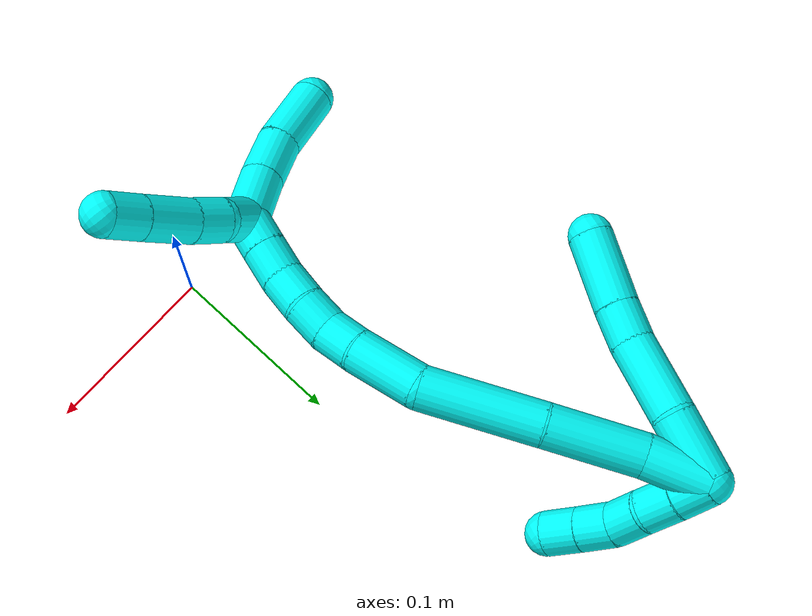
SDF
<sdf version="1.7">
 <world name="default">
  <model name="3">
   <static>0</static>
   <link name="3">
    <collision name="collision-cylinder-e_1_2_8">
     <pose>0.01358 -0.014236 0.00234 1.40786 0.755174 0.649628</pose>
     <geometry><cylinder><radius>0.0125</radius><length>0.039627</length></cylinder></geometry>
     <surface>
      <friction><ode><mu>1.16</mu><mu2>1.16</mu2><slip1>0</slip1><slip2>0</slip2></ode></friction>
      <contact><ode><kp>1e+06</kp><kd>1</kd><max_vel>0</max_vel><min_depth>0.001</min_depth></ode></contact>
     </surface>
    </collision>
    <visual name="visual-cylinder-e_1_2_8">
     <pose>0.01358 -0.014236 0.00234 1.40786 0.755174 0.649628</pose>
     <geometry><cylinder><radius>0.0125</radius><length>0.039627</length></cylinder></geometry>
     <material><ambient>0.003922 1 0.996078 1</ambient></material>
    </visual>
    <collision name="collision-cylinder-e_2_8_9">
     <pose>0.039217 -0.047701 0.006588 1.47195 0.557832 0.507582</pose>
     <geometry><cylinder><radius>0.0125</radius><length>0.045551</length></cylinder></geometry>
     <surface>
      <friction><ode><mu>1.16</mu><mu2>1.16</mu2><slip1>0</slip1><slip2>0</slip2></ode></friction>
      <contact><ode><kp>1e+06</kp><kd>1</kd><max_vel>0</max_vel><min_depth>0.001</min_depth></ode></contact>
     </surface>
    </collision>
    <visual name="visual-cylinder-e_2_8_9">
     <pose>0.039217 -0.047701 0.006588 1.47195 0.557832 0.507582</pose>
     <geometry><cylinder><radius>0.0125</radius><length>0.045551</length></cylinder></geometry>
     <material><ambient>0.003922 1 0.996078 1</ambient></material>
    </visual>
    <collision name="collision-cylinder-e_3_9_10">
     <pose>0.057826 -0.075573 0.010752 1.3153 0.632873 0.495404</pose>
     <geometry><cylinder><radius>0.0125</radius><length>0.022157</length></cylinder></geometry>
     <surface>
      <friction><ode><mu>1.16</mu><mu2>1.16</mu2><slip1>0</slip1><slip2>0</slip2></ode></friction>
      <contact><ode><kp>1e+06</kp><kd>1</kd><max_vel>0</max_vel><min_depth>0.001</min_depth></ode></contact>
     </surface>
    </collision>
    <visual name="visual-cylinder-e_3_9_10">
     <pose>0.057826 -0.075573 0.010752 1.3153 0.632873 0.495404</pose>
     <geometry><cylinder><radius>0.0125</radius><length>0.022157</length></cylinder></geometry>
     <material><ambient>0.003922 1 0.996078 1</ambient></material>
    </visual>
    <collision name="collision-cylinder-e_4_10_6">
     <pose>0.07662 -0.100855 0.018334 1.26111 0.611178 0.452675</pose>
     <geometry><cylinder><radius>0.0125</radius><length>0.042664</length></cylinder></geometry>
     <surface>
      <friction><ode><mu>1.16</mu><mu2>1.16</mu2><slip1>0</slip1><slip2>0</slip2></ode></friction>
      <contact><ode><kp>1e+06</kp><kd>1</kd><max_vel>0</max_vel><min_depth>0.001</min_depth></ode></contact>
     </surface>
    </collision>
    <visual name="visual-cylinder-e_4_10_6">
     <pose>0.07662 -0.100855 0.018334 1.26111 0.611178 0.452675</pose>
     <geometry><cylinder><radius>0.0125</radius><length>0.042664</length></cylinder></geometry>
     <material><ambient>0.003922 1 0.996078 1</ambient></material>
    </visual>
    <collision name="collision-cylinder-e_1_2_11">
     <pose>-0.000101 -0.002667 -0.009637 2.87163 -0.010061 -0.074054</pose>
     <geometry><cylinder><radius>0.0125</radius><length>0.02</length></cylinder></geometry>
     <surface>
      <friction><ode><mu>1.16</mu><mu2>1.16</mu2><slip1>0</slip1><slip2>0</slip2></ode></friction>
      <contact><ode><kp>1e+06</kp><kd>1</kd><max_vel>0</max_vel><min_depth>0.001</min_depth></ode></contact>
     </surface>
    </collision>
    <visual name="visual-cylinder-e_1_2_11">
     <pose>-0.000101 -0.002667 -0.009637 2.87163 -0.010061 -0.074054</pose>
     <geometry><cylinder><radius>0.0125</radius><length>0.02</length></cylinder></geometry>
     <material><ambient>0.003922 1 0.996078 1</ambient></material>
    </visual>
    <collision name="collision-cylinder-e_2_11_12">
     <pose>-0.00039 -0.008504 -0.028757 2.81887 -0.018875 -0.115835</pose>
     <geometry><cylinder><radius>0.0125</radius><length>0.02</length></cylinder></geometry>
     <surface>
      <friction><ode><mu>1.16</mu><mu2>1.16</mu2><slip1>0</slip1><slip2>0</slip2></ode></friction>
      <contact><ode><kp>1e+06</kp><kd>1</kd><max_vel>0</max_vel><min_depth>0.001</min_depth></ode></contact>
     </surface>
    </collision>
    <visual name="visual-cylinder-e_2_11_12">
     <pose>-0.00039 -0.008504 -0.028757 2.81887 -0.018875 -0.115835</pose>
     <geometry><cylinder><radius>0.0125</radius><length>0.02</length></cylinder></geometry>
     <material><ambient>0.003922 1 0.996078 1</ambient></material>
    </visual>
    <collision name="collision-cylinder-e_3_12_13">
     <pose>-0.002234 -0.015963 -0.04712 2.69182 -0.166281 -0.698687</pose>
     <geometry><cylinder><radius>0.0125</radius><length>0.02</length></cylinder></geometry>
     <surface>
      <friction><ode><mu>1.16</mu><mu2>1.16</mu2><slip1>0</slip1><slip2>0</slip2></ode></friction>
      <contact><ode><kp>1e+06</kp><kd>1</kd><max_vel>0</max_vel><min_depth>0.001</min_depth></ode></contact>
     </surface>
    </collision>
    <visual name="visual-cylinder-e_3_12_13">
     <pose>-0.002234 -0.015963 -0.04712 2.69182 -0.166281 -0.698687</pose>
     <geometry><cylinder><radius>0.0125</radius><length>0.02</length></cylinder></geometry>
     <material><ambient>0.003922 1 0.996078 1</ambient></material>
    </visual>
    <collision name="collision-cylinder-e_4_13_14">
     <pose>-0.002335 -0.024801 -0.064769 2.66285 0.15608 0.620166</pose>
     <geometry><cylinder><radius>0.0125</radius><length>0.02</length></cylinder></geometry>
     <surface>
      <friction><ode><mu>1.16</mu><mu2>1.16</mu2><slip1>0</slip1><slip2>0</slip2></ode></friction>
      <contact><ode><kp>1e+06</kp><kd>1</kd><max_vel>0</max_vel><min_depth>0.001</min_depth></ode></contact>
     </surface>
    </collision>
    <visual name="visual-cylinder-e_4_13_14">
     <pose>-0.002335 -0.024801 -0.064769 2.66285 0.15608 0.620166</pose>
     <geometry><cylinder><radius>0.0125</radius><length>0.02</length></cylinder></geometry>
     <material><ambient>0.003922 1 0.996078 1</ambient></material>
    </visual>
    <collision name="collision-cylinder-e_5_14_5">
     <pose>0.000765 -0.034115 -0.082193 2.6386 0.155156 0.587569</pose>
     <geometry><cylinder><radius>0.0125</radius><length>0.02</length></cylinder></geometry>
     <surface>
      <friction><ode><mu>1.16</mu><mu2>1.16</mu2><slip1>0</slip1><slip2>0</slip2></ode></friction>
      <contact><ode><kp>1e+06</kp><kd>1</kd><max_vel>0</max_vel><min_depth>0.001</min_depth></ode></contact>
     </surface>
    </collision>
    <visual name="visual-cylinder-e_5_14_5">
     <pose>0.000765 -0.034115 -0.082193 2.6386 0.155156 0.587569</pose>
     <geometry><cylinder><radius>0.0125</radius><length>0.02</length></cylinder></geometry>
     <material><ambient>0.003922 1 0.996078 1</ambient></material>
    </visual>
    <collision name="collision-cylinder-e_1_2_15">
     <pose>0.013386 -0.008207 -0.009585 2.43347 0.814899 1.72515</pose>
     <geometry><cylinder><radius>0.0125</radius><length>0.036791</length></cylinder></geometry>
     <surface>
      <friction><ode><mu>1.16</mu><mu2>1.16</mu2><slip1>0</slip1><slip2>0</slip2></ode></friction>
      <contact><ode><kp>1e+06</kp><kd>1</kd><max_vel>0</max_vel><min_depth>0.001</min_depth></ode></contact>
     </surface>
    </collision>
    <visual name="visual-cylinder-e_1_2_15">
     <pose>0.013386 -0.008207 -0.009585 2.43347 0.814899 1.72515</pose>
     <geometry><cylinder><radius>0.0125</radius><length>0.036791</length></cylinder></geometry>
     <material><ambient>0.003922 1 0.996078 1</ambient></material>
    </visual>
    <collision name="collision-cylinder-e_2_15_16">
     <pose>0.047586 -0.024989 -0.034734 2.63803 0.864116 2.12386</pose>
     <geometry><cylinder><radius>0.0125</radius><length>0.054738</length></cylinder></geometry>
     <surface>
      <friction><ode><mu>1.16</mu><mu2>1.16</mu2><slip1>0</slip1><slip2>0</slip2></ode></friction>
      <contact><ode><kp>1e+06</kp><kd>1</kd><max_vel>0</max_vel><min_depth>0.001</min_depth></ode></contact>
     </surface>
    </collision>
    <visual name="visual-cylinder-e_2_15_16">
     <pose>0.047586 -0.024989 -0.034734 2.63803 0.864116 2.12386</pose>
     <geometry><cylinder><radius>0.0125</radius><length>0.054738</length></cylinder></geometry>
     <material><ambient>0.003922 1 0.996078 1</ambient></material>
    </visual>
    <collision name="collision-cylinder-e_3_16_17">
     <pose>0.091883 -0.047527 -0.070587 2.53883 0.761598 1.82114</pose>
     <geometry><cylinder><radius>0.0125</radius><length>0.068058</length></cylinder></geometry>
     <surface>
      <friction><ode><mu>1.16</mu><mu2>1.16</mu2><slip1>0</slip1><slip2>0</slip2></ode></friction>
      <contact><ode><kp>1e+06</kp><kd>1</kd><max_vel>0</max_vel><min_depth>0.001</min_depth></ode></contact>
     </surface>
    </collision>
    <visual name="visual-cylinder-e_3_16_17">
     <pose>0.091883 -0.047527 -0.070587 2.53883 0.761598 1.82114</pose>
     <geometry><cylinder><radius>0.0125</radius><length>0.068058</length></cylinder></geometry>
     <material><ambient>0.003922 1 0.996078 1</ambient></material>
    </visual>
    <collision name="collision-cylinder-e_4_17_18">
     <pose>0.127289 -0.075108 -0.09918 2.11841 0.641857 1.06914</pose>
     <geometry><cylinder><radius>0.0125</radius><length>0.03983</length></cylinder></geometry>
     <surface>
      <friction><ode><mu>1.16</mu><mu2>1.16</mu2><slip1>0</slip1><slip2>0</slip2></ode></friction>
      <contact><ode><kp>1e+06</kp><kd>1</kd><max_vel>0</max_vel><min_depth>0.001</min_depth></ode></contact>
     </surface>
    </collision>
    <visual name="visual-cylinder-e_4_17_18">
     <pose>0.127289 -0.075108 -0.09918 2.11841 0.641857 1.06914</pose>
     <geometry><cylinder><radius>0.0125</radius><length>0.03983</length></cylinder></geometry>
     <material><ambient>0.003922 1 0.996078 1</ambient></material>
    </visual>
    <collision name="collision-cylinder-e_5_18_19">
     <pose>0.144487 -0.096632 -0.111208 2.01092 0.543209 0.827288</pose>
     <geometry><cylinder><radius>0.0125</radius><length>0.020413</length></cylinder></geometry>
     <surface>
      <friction><ode><mu>1.16</mu><mu2>1.16</mu2><slip1>0</slip1><slip2>0</slip2></ode></friction>
      <contact><ode><kp>1e+06</kp><kd>1</kd><max_vel>0</max_vel><min_depth>0.001</min_depth></ode></contact>
     </surface>
    </collision>
    <visual name="visual-cylinder-e_5_18_19">
     <pose>0.144487 -0.096632 -0.111208 2.01092 0.543209 0.827288</pose>
     <geometry><cylinder><radius>0.0125</radius><length>0.020413</length></cylinder></geometry>
     <material><ambient>0.003922 1 0.996078 1</ambient></material>
    </visual>
    <collision name="collision-cylinder-e_6_19_20">
     <pose>0.156708 -0.111639 -0.116482 1.78592 0.762523 0.923976</pose>
     <geometry><cylinder><radius>0.0125</radius><length>0.020111</length></cylinder></geometry>
     <surface>
      <friction><ode><mu>1.16</mu><mu2>1.16</mu2><slip1>0</slip1><slip2>0</slip2></ode></friction>
      <contact><ode><kp>1e+06</kp><kd>1</kd><max_vel>0</max_vel><min_depth>0.001</min_depth></ode></contact>
     </surface>
    </collision>
    <visual name="visual-cylinder-e_6_19_20">
     <pose>0.156708 -0.111639 -0.116482 1.78592 0.762523 0.923976</pose>
     <geometry><cylinder><radius>0.0125</radius><length>0.020111</length></cylinder></geometry>
     <material><ambient>0.003922 1 0.996078 1</ambient></material>
    </visual>
    <collision name="collision-cylinder-e_7_20_21">
     <pose>0.169442 -0.126823 -0.119157 1.7088 0.617123 0.701839</pose>
     <geometry><cylinder><radius>0.0125</radius><length>0.020005</length></cylinder></geometry>
     <surface>
      <friction><ode><mu>1.16</mu><mu2>1.16</mu2><slip1>0</slip1><slip2>0</slip2></ode></friction>
      <contact><ode><kp>1e+06</kp><kd>1</kd><max_vel>0</max_vel><min_depth>0.001</min_depth></ode></contact>
     </surface>
    </collision>
    <visual name="visual-cylinder-e_7_20_21">
     <pose>0.169442 -0.126823 -0.119157 1.7088 0.617123 0.701839</pose>
     <geometry><cylinder><radius>0.0125</radius><length>0.020005</length></cylinder></geometry>
     <material><ambient>0.003922 1 0.996078 1</ambient></material>
    </visual>
    <collision name="collision-cylinder-e_8_21_22">
     <pose>0.181709 -0.142519 -0.120052 1.54106 0.704634 0.685587</pose>
     <geometry><cylinder><radius>0.0125</radius><length>0.020005</length></cylinder></geometry>
     <surface>
      <friction><ode><mu>1.16</mu><mu2>1.16</mu2><slip1>0</slip1><slip2>0</slip2></ode></friction>
      <contact><ode><kp>1e+06</kp><kd>1</kd><max_vel>0</max_vel><min_depth>0.001</min_depth></ode></contact>
     </surface>
    </collision>
    <visual name="visual-cylinder-e_8_21_22">
     <pose>0.181709 -0.142519 -0.120052 1.54106 0.704634 0.685587</pose>
     <geometry><cylinder><radius>0.0125</radius><length>0.020005</length></cylinder></geometry>
     <material><ambient>0.003922 1 0.996078 1</ambient></material>
    </visual>
    <collision name="collision-cylinder-e_9_22_1">
     <pose>0.194619 -0.15782 -0.119493 1.52757 0.696402 0.669125</pose>
     <geometry><cylinder><radius>0.0125</radius><length>0.020051</length></cylinder></geometry>
     <surface>
      <friction><ode><mu>1.16</mu><mu2>1.16</mu2><slip1>0</slip1><slip2>0</slip2></ode></friction>
      <contact><ode><kp>1e+06</kp><kd>1</kd><max_vel>0</max_vel><min_depth>0.001</min_depth></ode></contact>
     </surface>
    </collision>
    <visual name="visual-cylinder-e_9_22_1">
     <pose>0.194619 -0.15782 -0.119493 1.52757 0.696402 0.669125</pose>
     <geometry><cylinder><radius>0.0125</radius><length>0.020051</length></cylinder></geometry>
     <material><ambient>0.003922 1 0.996078 1</ambient></material>
    </visual>
    <collision name="collision-cylinder-e_1_1_23">
     <pose>0.200786 -0.179243 -0.111472 1.0606 -0.016807 -0.009854</pose>
     <geometry><cylinder><radius>0.0125</radius><length>0.031493</length></cylinder></geometry>
     <surface>
      <friction><ode><mu>1.16</mu><mu2>1.16</mu2><slip1>0</slip1><slip2>0</slip2></ode></friction>
      <contact><ode><kp>1e+06</kp><kd>1</kd><max_vel>0</max_vel><min_depth>0.001</min_depth></ode></contact>
     </surface>
    </collision>
    <visual name="visual-cylinder-e_1_1_23">
     <pose>0.200786 -0.179243 -0.111472 1.0606 -0.016807 -0.009854</pose>
     <geometry><cylinder><radius>0.0125</radius><length>0.031493</length></cylinder></geometry>
     <material><ambient>0.003922 1 0.996078 1</ambient></material>
    </visual>
    <collision name="collision-cylinder-e_2_23_24">
     <pose>0.200231 -0.204795 -0.095463 0.95713 -0.020091 -0.010423</pose>
     <geometry><cylinder><radius>0.0125</radius><length>0.028904</length></cylinder></geometry>
     <surface>
      <friction><ode><mu>1.16</mu><mu2>1.16</mu2><slip1>0</slip1><slip2>0</slip2></ode></friction>
      <contact><ode><kp>1e+06</kp><kd>1</kd><max_vel>0</max_vel><min_depth>0.001</min_depth></ode></contact>
     </surface>
    </collision>
    <visual name="visual-cylinder-e_2_23_24">
     <pose>0.200231 -0.204795 -0.095463 0.95713 -0.020091 -0.010423</pose>
     <geometry><cylinder><radius>0.0125</radius><length>0.028904</length></cylinder></geometry>
     <material><ambient>0.003922 1 0.996078 1</ambient></material>
    </visual>
    <collision name="collision-cylinder-e_3_24_4">
     <pose>0.197358 -0.231038 -0.073831 0.825714 -0.130767 -0.057346</pose>
     <geometry><cylinder><radius>0.0125</radius><length>0.039603</length></cylinder></geometry>
     <surface>
      <friction><ode><mu>1.16</mu><mu2>1.16</mu2><slip1>0</slip1><slip2>0</slip2></ode></friction>
      <contact><ode><kp>1e+06</kp><kd>1</kd><max_vel>0</max_vel><min_depth>0.001</min_depth></ode></contact>
     </surface>
    </collision>
    <visual name="visual-cylinder-e_3_24_4">
     <pose>0.197358 -0.231038 -0.073831 0.825714 -0.130767 -0.057346</pose>
     <geometry><cylinder><radius>0.0125</radius><length>0.039603</length></cylinder></geometry>
     <material><ambient>0.003922 1 0.996078 1</ambient></material>
    </visual>
    <collision name="collision-cylinder-e_1_1_25">
     <pose>0.209822 -0.157481 -0.122435 -1.9582 0.7915 -1.11245</pose>
     <geometry><cylinder><radius>0.0125</radius><length>0.02466</length></cylinder></geometry>
     <surface>
      <friction><ode><mu>1.16</mu><mu2>1.16</mu2><slip1>0</slip1><slip2>0</slip2></ode></friction>
      <contact><ode><kp>1e+06</kp><kd>1</kd><max_vel>0</max_vel><min_depth>0.001</min_depth></ode></contact>
     </surface>
    </collision>
    <visual name="visual-cylinder-e_1_1_25">
     <pose>0.209822 -0.157481 -0.122435 -1.9582 0.7915 -1.11245</pose>
     <geometry><cylinder><radius>0.0125</radius><length>0.02466</length></cylinder></geometry>
     <material><ambient>0.003922 1 0.996078 1</ambient></material>
    </visual>
    <collision name="collision-cylinder-e_2_25_26">
     <pose>0.226394 -0.145165 -0.130973 -2.45748 0.85436 -1.81405</pose>
     <geometry><cylinder><radius>0.0125</radius><length>0.020687</length></cylinder></geometry>
     <surface>
      <friction><ode><mu>1.16</mu><mu2>1.16</mu2><slip1>0</slip1><slip2>0</slip2></ode></friction>
      <contact><ode><kp>1e+06</kp><kd>1</kd><max_vel>0</max_vel><min_depth>0.001</min_depth></ode></contact>
     </surface>
    </collision>
    <visual name="visual-cylinder-e_2_25_26">
     <pose>0.226394 -0.145165 -0.130973 -2.45748 0.85436 -1.81405</pose>
     <geometry><cylinder><radius>0.0125</radius><length>0.020687</length></cylinder></geometry>
     <material><ambient>0.003922 1 0.996078 1</ambient></material>
    </visual>
    <collision name="collision-cylinder-e_3_26_27">
     <pose>0.24715 -0.13445 -0.143423 -2.41231 0.931196 -1.84222</pose>
     <geometry><cylinder><radius>0.0125</radius><length>0.032293</length></cylinder></geometry>
     <surface>
      <friction><ode><mu>1.16</mu><mu2>1.16</mu2><slip1>0</slip1><slip2>0</slip2></ode></friction>
      <contact><ode><kp>1e+06</kp><kd>1</kd><max_vel>0</max_vel><min_depth>0.001</min_depth></ode></contact>
     </surface>
    </collision>
    <visual name="visual-cylinder-e_3_26_27">
     <pose>0.24715 -0.13445 -0.143423 -2.41231 0.931196 -1.84222</pose>
     <geometry><cylinder><radius>0.0125</radius><length>0.032293</length></cylinder></geometry>
     <material><ambient>0.003922 1 0.996078 1</ambient></material>
    </visual>
    <collision name="collision-cylinder-e_4_27_3">
     <pose>0.269177 -0.123815 -0.155603 -2.44075 0.946648 -1.90193</pose>
     <geometry><cylinder><radius>0.0125</radius><length>0.022359</length></cylinder></geometry>
     <surface>
      <friction><ode><mu>1.16</mu><mu2>1.16</mu2><slip1>0</slip1><slip2>0</slip2></ode></friction>
      <contact><ode><kp>1e+06</kp><kd>1</kd><max_vel>0</max_vel><min_depth>0.001</min_depth></ode></contact>
     </surface>
    </collision>
    <visual name="visual-cylinder-e_4_27_3">
     <pose>0.269177 -0.123815 -0.155603 -2.44075 0.946648 -1.90193</pose>
     <geometry><cylinder><radius>0.0125</radius><length>0.022359</length></cylinder></geometry>
     <material><ambient>0.003922 1 0.996078 1</ambient></material>
    </visual>
    <collision name="collision-sphere-3">
     <pose>0.278249 -0.119602 -0.160596 0 -0 0</pose>
     <geometry><sphere><radius>0.0125</radius></sphere></geometry>
     <surface>
      <friction><ode><mu>1.16</mu><mu2>1.16</mu2><slip1>0</slip1><slip2>0</slip2></ode></friction>
      <contact><ode><kp>1e+06</kp><kd>1</kd><max_vel>0</max_vel><min_depth>0.001</min_depth></ode></contact>
     </surface>
    </collision>
    <visual name="visual-sphere-3">
     <pose>0.278249 -0.119602 -0.160596 0 -0 0</pose>
     <geometry><sphere><radius>0.0125</radius></sphere></geometry>
     <material><ambient>0.003922 1 0.996078 1</ambient></material>
    </visual>
    <collision name="collision-sphere-27">
     <pose>0.260105 -0.128028 -0.150609 0 -0 0</pose>
     <geometry><sphere><radius>0.0125</radius></sphere></geometry>
     <surface>
      <friction><ode><mu>1.16</mu><mu2>1.16</mu2><slip1>0</slip1><slip2>0</slip2></ode></friction>
      <contact><ode><kp>1e+06</kp><kd>1</kd><max_vel>0</max_vel><min_depth>0.001</min_depth></ode></contact>
     </surface>
    </collision>
    <visual name="visual-sphere-27">
     <pose>0.260105 -0.128028 -0.150609 0 -0 0</pose>
     <geometry><sphere><radius>0.0125</radius></sphere></geometry>
     <material><ambient>0.003922 1 0.996078 1</ambient></material>
    </visual>
    <collision name="collision-sphere-26">
     <pose>0.234195 -0.140872 -0.136237 0 -0 0</pose>
     <geometry><sphere><radius>0.0125</radius></sphere></geometry>
     <surface>
      <friction><ode><mu>1.16</mu><mu2>1.16</mu2><slip1>0</slip1><slip2>0</slip2></ode></friction>
      <contact><ode><kp>1e+06</kp><kd>1</kd><max_vel>0</max_vel><min_depth>0.001</min_depth></ode></contact>
     </surface>
    </collision>
    <visual name="visual-sphere-26">
     <pose>0.234195 -0.140872 -0.136237 0 -0 0</pose>
     <geometry><sphere><radius>0.0125</radius></sphere></geometry>
     <material><ambient>0.003922 1 0.996078 1</ambient></material>
    </visual>
    <collision name="collision-sphere-25">
     <pose>0.218594 -0.149458 -0.125708 0 -0 0</pose>
     <geometry><sphere><radius>0.0125</radius></sphere></geometry>
     <surface>
      <friction><ode><mu>1.16</mu><mu2>1.16</mu2><slip1>0</slip1><slip2>0</slip2></ode></friction>
      <contact><ode><kp>1e+06</kp><kd>1</kd><max_vel>0</max_vel><min_depth>0.001</min_depth></ode></contact>
     </surface>
    </collision>
    <visual name="visual-sphere-25">
     <pose>0.218594 -0.149458 -0.125708 0 -0 0</pose>
     <geometry><sphere><radius>0.0125</radius></sphere></geometry>
     <material><ambient>0.003922 1 0.996078 1</ambient></material>
    </visual>
    <collision name="collision-sphere-4">
     <pose>0.194776 -0.245469 -0.060519 0 -0 0</pose>
     <geometry><sphere><radius>0.0125</radius></sphere></geometry>
     <surface>
      <friction><ode><mu>1.16</mu><mu2>1.16</mu2><slip1>0</slip1><slip2>0</slip2></ode></friction>
      <contact><ode><kp>1e+06</kp><kd>1</kd><max_vel>0</max_vel><min_depth>0.001</min_depth></ode></contact>
     </surface>
    </collision>
    <visual name="visual-sphere-4">
     <pose>0.194776 -0.245469 -0.060519 0 -0 0</pose>
     <geometry><sphere><radius>0.0125</radius></sphere></geometry>
     <material><ambient>0.003922 1 0.996078 1</ambient></material>
    </visual>
    <collision name="collision-sphere-24">
     <pose>0.19994 -0.216608 -0.087142 0 -0 0</pose>
     <geometry><sphere><radius>0.0125</radius></sphere></geometry>
     <surface>
      <friction><ode><mu>1.16</mu><mu2>1.16</mu2><slip1>0</slip1><slip2>0</slip2></ode></friction>
      <contact><ode><kp>1e+06</kp><kd>1</kd><max_vel>0</max_vel><min_depth>0.001</min_depth></ode></contact>
     </surface>
    </collision>
    <visual name="visual-sphere-24">
     <pose>0.19994 -0.216608 -0.087142 0 -0 0</pose>
     <geometry><sphere><radius>0.0125</radius></sphere></geometry>
     <material><ambient>0.003922 1 0.996078 1</ambient></material>
    </visual>
    <collision name="collision-sphere-23">
     <pose>0.200521 -0.192982 -0.103784 0 -0 0</pose>
     <geometry><sphere><radius>0.0125</radius></sphere></geometry>
     <surface>
      <friction><ode><mu>1.16</mu><mu2>1.16</mu2><slip1>0</slip1><slip2>0</slip2></ode></friction>
      <contact><ode><kp>1e+06</kp><kd>1</kd><max_vel>0</max_vel><min_depth>0.001</min_depth></ode></contact>
     </surface>
    </collision>
    <visual name="visual-sphere-23">
     <pose>0.200521 -0.192982 -0.103784 0 -0 0</pose>
     <geometry><sphere><radius>0.0125</radius></sphere></geometry>
     <material><ambient>0.003922 1 0.996078 1</ambient></material>
    </visual>
    <collision name="collision-sphere-1">
     <pose>0.20105 -0.165504 -0.119161 0 -0 0</pose>
     <geometry><sphere><radius>0.0125</radius></sphere></geometry>
     <surface>
      <friction><ode><mu>1.16</mu><mu2>1.16</mu2><slip1>0</slip1><slip2>0</slip2></ode></friction>
      <contact><ode><kp>1e+06</kp><kd>1</kd><max_vel>0</max_vel><min_depth>0.001</min_depth></ode></contact>
     </surface>
    </collision>
    <visual name="visual-sphere-1">
     <pose>0.20105 -0.165504 -0.119161 0 -0 0</pose>
     <geometry><sphere><radius>0.0125</radius></sphere></geometry>
     <material><ambient>0.003922 1 0.996078 1</ambient></material>
    </visual>
    <collision name="collision-sphere-22">
     <pose>0.188188 -0.150136 -0.119826 0 -0 0</pose>
     <geometry><sphere><radius>0.0125</radius></sphere></geometry>
     <surface>
      <friction><ode><mu>1.16</mu><mu2>1.16</mu2><slip1>0</slip1><slip2>0</slip2></ode></friction>
      <contact><ode><kp>1e+06</kp><kd>1</kd><max_vel>0</max_vel><min_depth>0.001</min_depth></ode></contact>
     </surface>
    </collision>
    <visual name="visual-sphere-22">
     <pose>0.188188 -0.150136 -0.119826 0 -0 0</pose>
     <geometry><sphere><radius>0.0125</radius></sphere></geometry>
     <material><ambient>0.003922 1 0.996078 1</ambient></material>
    </visual>
    <collision name="collision-sphere-21">
     <pose>0.17523 -0.134902 -0.120279 0 -0 0</pose>
     <geometry><sphere><radius>0.0125</radius></sphere></geometry>
     <surface>
      <friction><ode><mu>1.16</mu><mu2>1.16</mu2><slip1>0</slip1><slip2>0</slip2></ode></friction>
      <contact><ode><kp>1e+06</kp><kd>1</kd><max_vel>0</max_vel><min_depth>0.001</min_depth></ode></contact>
     </surface>
    </collision>
    <visual name="visual-sphere-21">
     <pose>0.17523 -0.134902 -0.120279 0 -0 0</pose>
     <geometry><sphere><radius>0.0125</radius></sphere></geometry>
     <material><ambient>0.003922 1 0.996078 1</ambient></material>
    </visual>
    <collision name="collision-sphere-11">
     <pose>-0.000201 -0.005334 -0.019275 0 -0 0</pose>
     <geometry><sphere><radius>0.0125</radius></sphere></geometry>
     <surface>
      <friction><ode><mu>1.16</mu><mu2>1.16</mu2><slip1>0</slip1><slip2>0</slip2></ode></friction>
      <contact><ode><kp>1e+06</kp><kd>1</kd><max_vel>0</max_vel><min_depth>0.001</min_depth></ode></contact>
     </surface>
    </collision>
    <visual name="visual-sphere-11">
     <pose>-0.000201 -0.005334 -0.019275 0 -0 0</pose>
     <geometry><sphere><radius>0.0125</radius></sphere></geometry>
     <material><ambient>0.003922 1 0.996078 1</ambient></material>
    </visual>
    <collision name="collision-sphere-6">
     <pose>0.088861 -0.117495 0.023658 0 -0 0</pose>
     <geometry><sphere><radius>0.0125</radius></sphere></geometry>
     <surface>
      <friction><ode><mu>1.16</mu><mu2>1.16</mu2><slip1>0</slip1><slip2>0</slip2></ode></friction>
      <contact><ode><kp>1e+06</kp><kd>1</kd><max_vel>0</max_vel><min_depth>0.001</min_depth></ode></contact>
     </surface>
    </collision>
    <visual name="visual-sphere-6">
     <pose>0.088861 -0.117495 0.023658 0 -0 0</pose>
     <geometry><sphere><radius>0.0125</radius></sphere></geometry>
     <material><ambient>0.003922 1 0.996078 1</ambient></material>
    </visual>
    <collision name="collision-sphere-10">
     <pose>0.064379 -0.084216 0.01301 0 -0 0</pose>
     <geometry><sphere><radius>0.0125</radius></sphere></geometry>
     <surface>
      <friction><ode><mu>1.16</mu><mu2>1.16</mu2><slip1>0</slip1><slip2>0</slip2></ode></friction>
      <contact><ode><kp>1e+06</kp><kd>1</kd><max_vel>0</max_vel><min_depth>0.001</min_depth></ode></contact>
     </surface>
    </collision>
    <visual name="visual-sphere-10">
     <pose>0.064379 -0.084216 0.01301 0 -0 0</pose>
     <geometry><sphere><radius>0.0125</radius></sphere></geometry>
     <material><ambient>0.003922 1 0.996078 1</ambient></material>
    </visual>
    <collision name="collision-sphere-9">
     <pose>0.051274 -0.06693 0.008495 0 -0 0</pose>
     <geometry><sphere><radius>0.0125</radius></sphere></geometry>
     <surface>
      <friction><ode><mu>1.16</mu><mu2>1.16</mu2><slip1>0</slip1><slip2>0</slip2></ode></friction>
      <contact><ode><kp>1e+06</kp><kd>1</kd><max_vel>0</max_vel><min_depth>0.001</min_depth></ode></contact>
     </surface>
    </collision>
    <visual name="visual-sphere-9">
     <pose>0.051274 -0.06693 0.008495 0 -0 0</pose>
     <geometry><sphere><radius>0.0125</radius></sphere></geometry>
     <material><ambient>0.003922 1 0.996078 1</ambient></material>
    </visual>
    <collision name="collision-sphere-2">
     <geometry><sphere><radius>0.0125</radius></sphere></geometry>
     <surface>
      <friction><ode><mu>1.16</mu><mu2>1.16</mu2><slip1>0</slip1><slip2>0</slip2></ode></friction>
      <contact><ode><kp>1e+06</kp><kd>1</kd><max_vel>0</max_vel><min_depth>0.001</min_depth></ode></contact>
     </surface>
    </collision>
    <visual name="visual-sphere-2">
     <geometry><sphere><radius>0.0125</radius></sphere></geometry>
     <material><ambient>0.003922 1 0.996078 1</ambient></material>
    </visual>
    <collision name="collision-sphere-19">
     <pose>0.149762 -0.104536 -0.11493 0 -0 0</pose>
     <geometry><sphere><radius>0.0125</radius></sphere></geometry>
     <surface>
      <friction><ode><mu>1.16</mu><mu2>1.16</mu2><slip1>0</slip1><slip2>0</slip2></ode></friction>
      <contact><ode><kp>1e+06</kp><kd>1</kd><max_vel>0</max_vel><min_depth>0.001</min_depth></ode></contact>
     </surface>
    </collision>
    <visual name="visual-sphere-19">
     <pose>0.149762 -0.104536 -0.11493 0 -0 0</pose>
     <geometry><sphere><radius>0.0125</radius></sphere></geometry>
     <material><ambient>0.003922 1 0.996078 1</ambient></material>
    </visual>
    <collision name="collision-sphere-8">
     <pose>0.027161 -0.028472 0.004681 0 -0 0</pose>
     <geometry><sphere><radius>0.0125</radius></sphere></geometry>
     <surface>
      <friction><ode><mu>1.16</mu><mu2>1.16</mu2><slip1>0</slip1><slip2>0</slip2></ode></friction>
      <contact><ode><kp>1e+06</kp><kd>1</kd><max_vel>0</max_vel><min_depth>0.001</min_depth></ode></contact>
     </surface>
    </collision>
    <visual name="visual-sphere-8">
     <pose>0.027161 -0.028472 0.004681 0 -0 0</pose>
     <geometry><sphere><radius>0.0125</radius></sphere></geometry>
     <material><ambient>0.003922 1 0.996078 1</ambient></material>
    </visual>
    <collision name="collision-sphere-12">
     <pose>-0.000579 -0.011675 -0.038239 0 -0 0</pose>
     <geometry><sphere><radius>0.0125</radius></sphere></geometry>
     <surface>
      <friction><ode><mu>1.16</mu><mu2>1.16</mu2><slip1>0</slip1><slip2>0</slip2></ode></friction>
      <contact><ode><kp>1e+06</kp><kd>1</kd><max_vel>0</max_vel><min_depth>0.001</min_depth></ode></contact>
     </surface>
    </collision>
    <visual name="visual-sphere-12">
     <pose>-0.000579 -0.011675 -0.038239 0 -0 0</pose>
     <geometry><sphere><radius>0.0125</radius></sphere></geometry>
     <material><ambient>0.003922 1 0.996078 1</ambient></material>
    </visual>
    <collision name="collision-sphere-13">
     <pose>-0.003889 -0.020251 -0.056001 0 -0 0</pose>
     <geometry><sphere><radius>0.0125</radius></sphere></geometry>
     <surface>
      <friction><ode><mu>1.16</mu><mu2>1.16</mu2><slip1>0</slip1><slip2>0</slip2></ode></friction>
      <contact><ode><kp>1e+06</kp><kd>1</kd><max_vel>0</max_vel><min_depth>0.001</min_depth></ode></contact>
     </surface>
    </collision>
    <visual name="visual-sphere-13">
     <pose>-0.003889 -0.020251 -0.056001 0 -0 0</pose>
     <geometry><sphere><radius>0.0125</radius></sphere></geometry>
     <material><ambient>0.003922 1 0.996078 1</ambient></material>
    </visual>
    <collision name="collision-sphere-14">
     <pose>-0.00078 -0.029352 -0.073537 0 -0 0</pose>
     <geometry><sphere><radius>0.0125</radius></sphere></geometry>
     <surface>
      <friction><ode><mu>1.16</mu><mu2>1.16</mu2><slip1>0</slip1><slip2>0</slip2></ode></friction>
      <contact><ode><kp>1e+06</kp><kd>1</kd><max_vel>0</max_vel><min_depth>0.001</min_depth></ode></contact>
     </surface>
    </collision>
    <visual name="visual-sphere-14">
     <pose>-0.00078 -0.029352 -0.073537 0 -0 0</pose>
     <geometry><sphere><radius>0.0125</radius></sphere></geometry>
     <material><ambient>0.003922 1 0.996078 1</ambient></material>
    </visual>
    <collision name="collision-sphere-5">
     <pose>0.002311 -0.038877 -0.090849 0 -0 0</pose>
     <geometry><sphere><radius>0.0125</radius></sphere></geometry>
     <surface>
      <friction><ode><mu>1.16</mu><mu2>1.16</mu2><slip1>0</slip1><slip2>0</slip2></ode></friction>
      <contact><ode><kp>1e+06</kp><kd>1</kd><max_vel>0</max_vel><min_depth>0.001</min_depth></ode></contact>
     </surface>
    </collision>
    <visual name="visual-sphere-5">
     <pose>0.002311 -0.038877 -0.090849 0 -0 0</pose>
     <geometry><sphere><radius>0.0125</radius></sphere></geometry>
     <material><ambient>0.003922 1 0.996078 1</ambient></material>
    </visual>
    <collision name="collision-sphere-15">
     <pose>0.026771 -0.016414 -0.019169 0 -0 0</pose>
     <geometry><sphere><radius>0.0125</radius></sphere></geometry>
     <surface>
      <friction><ode><mu>1.16</mu><mu2>1.16</mu2><slip1>0</slip1><slip2>0</slip2></ode></friction>
      <contact><ode><kp>1e+06</kp><kd>1</kd><max_vel>0</max_vel><min_depth>0.001</min_depth></ode></contact>
     </surface>
    </collision>
    <visual name="visual-sphere-15">
     <pose>0.026771 -0.016414 -0.019169 0 -0 0</pose>
     <geometry><sphere><radius>0.0125</radius></sphere></geometry>
     <material><ambient>0.003922 1 0.996078 1</ambient></material>
    </visual>
    <collision name="collision-sphere-16">
     <pose>0.0684 -0.033565 -0.050299 0 -0 0</pose>
     <geometry><sphere><radius>0.0125</radius></sphere></geometry>
     <surface>
      <friction><ode><mu>1.16</mu><mu2>1.16</mu2><slip1>0</slip1><slip2>0</slip2></ode></friction>
      <contact><ode><kp>1e+06</kp><kd>1</kd><max_vel>0</max_vel><min_depth>0.001</min_depth></ode></contact>
     </surface>
    </collision>
    <visual name="visual-sphere-16">
     <pose>0.0684 -0.033565 -0.050299 0 -0 0</pose>
     <geometry><sphere><radius>0.0125</radius></sphere></geometry>
     <material><ambient>0.003922 1 0.996078 1</ambient></material>
    </visual>
    <collision name="collision-sphere-17">
     <pose>0.115366 -0.061489 -0.090875 0 -0 0</pose>
     <geometry><sphere><radius>0.0125</radius></sphere></geometry>
     <surface>
      <friction><ode><mu>1.16</mu><mu2>1.16</mu2><slip1>0</slip1><slip2>0</slip2></ode></friction>
      <contact><ode><kp>1e+06</kp><kd>1</kd><max_vel>0</max_vel><min_depth>0.001</min_depth></ode></contact>
     </surface>
    </collision>
    <visual name="visual-sphere-17">
     <pose>0.115366 -0.061489 -0.090875 0 -0 0</pose>
     <geometry><sphere><radius>0.0125</radius></sphere></geometry>
     <material><ambient>0.003922 1 0.996078 1</ambient></material>
    </visual>
    <collision name="collision-sphere-18">
     <pose>0.139211 -0.088727 -0.107485 0 -0 0</pose>
     <geometry><sphere><radius>0.0125</radius></sphere></geometry>
     <surface>
      <friction><ode><mu>1.16</mu><mu2>1.16</mu2><slip1>0</slip1><slip2>0</slip2></ode></friction>
      <contact><ode><kp>1e+06</kp><kd>1</kd><max_vel>0</max_vel><min_depth>0.001</min_depth></ode></contact>
     </surface>
    </collision>
    <visual name="visual-sphere-18">
     <pose>0.139211 -0.088727 -0.107485 0 -0 0</pose>
     <geometry><sphere><radius>0.0125</radius></sphere></geometry>
     <material><ambient>0.003922 1 0.996078 1</ambient></material>
    </visual>
    <collision name="collision-sphere-20">
     <pose>0.163654 -0.118743 -0.118034 0 -0 0</pose>
     <geometry><sphere><radius>0.0125</radius></sphere></geometry>
     <surface>
      <friction><ode><mu>1.16</mu><mu2>1.16</mu2><slip1>0</slip1><slip2>0</slip2></ode></friction>
      <contact><ode><kp>1e+06</kp><kd>1</kd><max_vel>0</max_vel><min_depth>0.001</min_depth></ode></contact>
     </surface>
    </collision>
    <visual name="visual-sphere-20">
     <pose>0.163654 -0.118743 -0.118034 0 -0 0</pose>
     <geometry><sphere><radius>0.0125</radius></sphere></geometry>
     <material><ambient>0.003922 1 0.996078 1</ambient></material>
    </visual>
    <inertial>
     <pose>0.109362 -0.08775 -0.065429 0 -0 0</pose>
     <mass>0.75</mass>
     <inertia><ixx>0.000108</ixx><ixy>0</ixy><ixz>0</ixz><iyy>7.5e-05</iyy><iyz>0</iyz><izz>-2e-05</izz></inertia>
    </inertial>
   </link>
   <pose>-0.100401 0.287884 0.065209 1.12369 -0.732667 -1.48926</pose>
  </model>
 </world>
</sdf>
